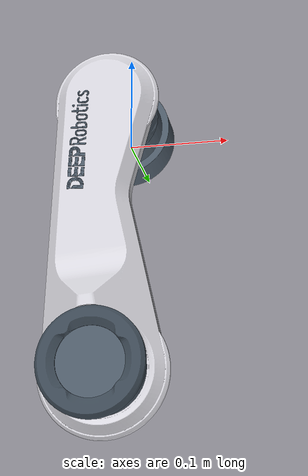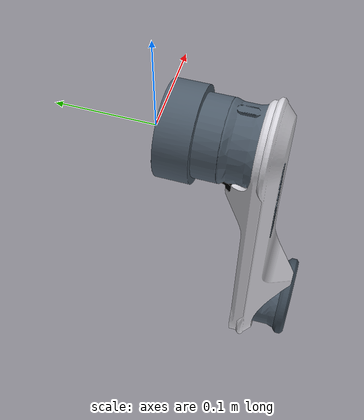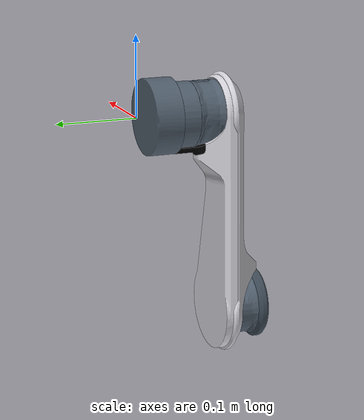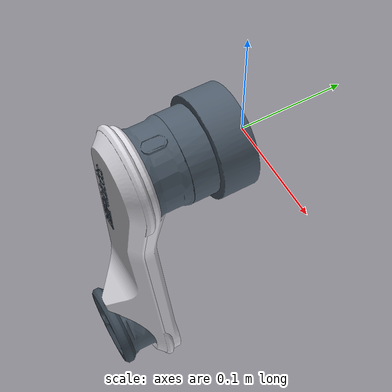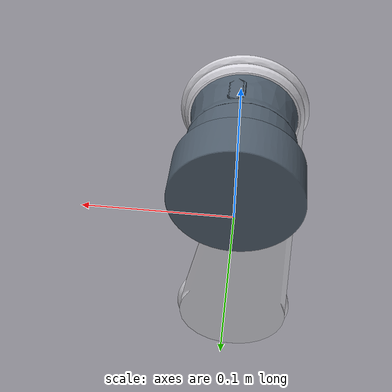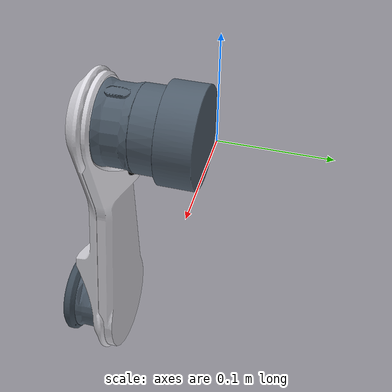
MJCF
<mujoco model="fr_hipy">
  <default>
    <default class="visual">
      <geom group="2" type="mesh" contype="0" conaffinity="0"/>
    </default>
    <default class="collision">
      <geom group="3" type="mesh"/>
    </default>
  </default>
  <asset>
    <material name="Material-7011油漆" specular="0.5" shininess="0.25" rgba="0.309804 0.364706 0.419608 1.000000"/>
    <material name="Material-7011油漆.001" specular="0.5" shininess="0.25" rgba="0.309804 0.364706 0.419608 1.000000"/>
    <material name="Material-7011油漆.002" specular="0.5" shininess="0.25" rgba="0.309804 0.364706 0.419608 1.000000"/>
    <material name="Material-7011油漆.003" specular="0.5" shininess="0.25" rgba="0.309804 0.364706 0.419608 1.000000"/>
    <material name="Material-7011油漆.004" specular="0.5" shininess="0.25" rgba="0.309804 0.364706 0.419608 1.000000"/>
    <material name="Material-7011油漆.005" specular="0.5" shininess="0.25" rgba="0.309804 0.364706 0.419608 1.000000"/>
    <material name="Material-7011油漆.006" specular="0.5" shininess="0.25" rgba="0.309804 0.364706 0.419608 1.000000"/>
    <material name="Material-7011油漆.007" specular="0.5" shininess="0.25" rgba="0.309804 0.364706 0.419608 1.000000"/>
    <material name="Material-7011油漆.008" specular="0.5" shininess="0.25" rgba="0.309804 0.364706 0.419608 1.000000"/>
    <material name="Material-7011油漆.009" specular="0.5" shininess="0.25" rgba="0.309804 0.364706 0.419608 1.000000"/>
    <material name="Material-7011油漆.010" specular="0.5" shininess="0.25" rgba="0.309804 0.364706 0.419608 1.000000"/>
    <material name="Material-7011油漆.011" specular="0.5" shininess="0.25" rgba="0.309804 0.364706 0.419608 1.000000"/>
    <material name="Material-7011油漆.012" specular="0.5" shininess="0.25" rgba="0.309804 0.364706 0.419608 1.000000"/>
    <material name="Material-7011油漆.013" specular="0.5" shininess="0.25" rgba="0.309804 0.364706 0.419608 1.000000"/>
    <material name="Material-7011油漆.014" specular="0.5" shininess="0.25" rgba="0.309804 0.364706 0.419608 1.000000"/>
    <material name="Material-7011油漆.015" specular="0.5" shininess="0.25" rgba="0.309804 0.364706 0.419608 1.000000"/>
    <material name="Material-7011油漆.016" specular="0.5" shininess="0.25" rgba="0.309804 0.364706 0.419608 1.000000"/>
    <material name="Material-7011油漆.017" specular="0.5" shininess="0.25" rgba="0.309804 0.364706 0.419608 1.000000"/>
    <material name="Material-7011油漆.018" specular="0.5" shininess="0.25" rgba="0.309804 0.364706 0.419608 1.000000"/>
    <material name="Material-7011油漆.019" specular="0.5" shininess="0.25" rgba="0.309804 0.364706 0.419608 1.000000"/>
    <material name="Material-7011油漆.020" specular="0.5" shininess="0.25" rgba="0.309804 0.364706 0.419608 1.000000"/>
    <material name="Material-7011油漆.021" specular="0.5" shininess="0.25" rgba="0.309804 0.364706 0.419608 1.000000"/>
    <material name="Material-7011油漆.022" specular="0.5" shininess="0.25" rgba="0.309804 0.364706 0.419608 1.000000"/>
    <material name="Material-7011油漆.023" specular="0.5" shininess="0.25" rgba="0.309804 0.364706 0.419608 1.000000"/>
    <material name="Material-7011油漆.024" specular="0.5" shininess="0.25" rgba="0.309804 0.364706 0.419608 1.000000"/>
    <material name="Material-7011油漆.025" specular="0.5" shininess="0.25" rgba="0.309804 0.364706 0.419608 1.000000"/>
    <material name="Material-7011油漆.026" specular="0.5" shininess="0.25" rgba="0.309804 0.364706 0.419608 1.000000"/>
    <material name="Material-7011油漆.027" specular="0.5" shininess="0.25" rgba="0.309804 0.364706 0.419608 1.000000"/>
    <material name="Material-7011油漆.028" specular="0.5" shininess="0.25" rgba="0.309804 0.364706 0.419608 1.000000"/>
    <material name="Material-7011油漆.029" specular="0.5" shininess="0.25" rgba="0.309804 0.364706 0.419608 1.000000"/>
    <material name="Material-7011油漆.030" specular="0.5" shininess="0.25" rgba="0.309804 0.364706 0.419608 1.000000"/>
    <material name="Material-7011油漆.031" specular="0.5" shininess="0.25" rgba="0.309804 0.364706 0.419608 1.000000"/>
    <material name="Material-7011油漆.032" specular="0.5" shininess="0.25" rgba="0.309804 0.364706 0.419608 1.000000"/>
    <material name="Material-7011油漆.033" specular="0.5" shininess="0.25" rgba="0.309804 0.364706 0.419608 1.000000"/>
    <material name="Material-7011油漆.034" specular="0.5" shininess="0.25" rgba="0.309804 0.364706 0.419608 1.000000"/>
    <material name="Material-7011油漆.035" specular="0.5" shininess="0.25" rgba="0.309804 0.364706 0.419608 1.000000"/>
    <material name="Material-7011油漆.036" specular="0.5" shininess="0.25" rgba="0.309804 0.364706 0.419608 1.000000"/>
    <material name="Material-7011油漆.037" specular="0.5" shininess="0.25" rgba="0.309804 0.364706 0.419608 1.000000"/>
    <material name="Material-7011油漆.038" specular="0.5" shininess="0.25" rgba="0.309804 0.364706 0.419608 1.000000"/>
    <material name="Material-7024塑胶" specular="0.5" shininess="0.25" rgba="0.239216 0.290196 0.337255 1.000000"/>
    <material name="Material-塑胶" specular="0.5" shininess="0.25" rgba="0.000000 0.000000 0.000000 1.000000"/>
    <material name="Material-塑胶__3_" specular="0.5" shininess="0.25" rgba="0.854902 0.850980 0.878431 1.000000"/>
    <material name="Material-油漆" specular="0.5" shininess="0.25" rgba="0.854902 0.850980 0.878431 1.000000"/>
    <mesh file="fr_hipy_0.obj"/>
    <mesh file="fr_hipy_1.obj"/>
    <mesh file="fr_hipy_2.obj"/>
    <mesh file="fr_hipy_3.obj"/>
    <mesh file="fr_hipy_4.obj"/>
    <mesh file="fr_hipy_5.obj"/>
    <mesh file="fr_hipy_6.obj"/>
    <mesh file="fr_hipy_7.obj"/>
    <mesh file="fr_hipy_8.obj"/>
    <mesh file="fr_hipy_9.obj"/>
    <mesh file="fr_hipy_10.obj"/>
    <mesh file="fr_hipy_11.obj"/>
    <mesh file="fr_hipy_12.obj"/>
    <mesh file="fr_hipy_13.obj"/>
    <mesh file="fr_hipy_14.obj"/>
    <mesh file="fr_hipy_15.obj"/>
    <mesh file="fr_hipy_16.obj"/>
    <mesh file="fr_hipy_17.obj"/>
    <mesh file="fr_hipy_18.obj"/>
    <mesh file="fr_hipy_19.obj"/>
    <mesh file="fr_hipy_20.obj"/>
    <mesh file="fr_hipy_21.obj"/>
    <mesh file="fr_hipy_22.obj"/>
    <mesh file="fr_hipy_23.obj"/>
    <mesh file="fr_hipy_24.obj"/>
    <mesh file="fr_hipy_25.obj"/>
    <mesh file="fr_hipy_26.obj"/>
    <mesh file="fr_hipy_27.obj"/>
    <mesh file="fr_hipy_28.obj"/>
    <mesh file="fr_hipy_29.obj"/>
    <mesh file="fr_hipy_30.obj"/>
    <mesh file="fr_hipy_31.obj"/>
    <mesh file="fr_hipy_32.obj"/>
    <mesh file="fr_hipy_33.obj"/>
    <mesh file="fr_hipy_34.obj"/>
    <mesh file="fr_hipy_35.obj"/>
    <mesh file="fr_hipy_36.obj"/>
    <mesh file="fr_hipy_37.obj"/>
    <mesh file="fr_hipy_38.obj"/>
    <mesh file="fr_hipy_39.obj"/>
    <mesh file="fr_hipy_40.obj"/>
    <mesh file="fr_hipy_41.obj"/>
    <mesh file="fr_hipy_42.obj"/>
  </asset>
  <worldbody>
    <body name="fr_hipy">
      <geom mesh="fr_hipy_0" material="Material-7011油漆.038" class="visual"/>
      <geom mesh="fr_hipy_1" material="Material-7011油漆.037" class="visual"/>
      <geom mesh="fr_hipy_2" material="Material-7011油漆.036" class="visual"/>
      <geom mesh="fr_hipy_3" material="Material-7011油漆.035" class="visual"/>
      <geom mesh="fr_hipy_4" material="Material-7011油漆.034" class="visual"/>
      <geom mesh="fr_hipy_5" material="Material-7011油漆.033" class="visual"/>
      <geom mesh="fr_hipy_6" material="Material-7011油漆.032" class="visual"/>
      <geom mesh="fr_hipy_7" material="Material-7011油漆.031" class="visual"/>
      <geom mesh="fr_hipy_8" material="Material-7011油漆.030" class="visual"/>
      <geom mesh="fr_hipy_9" material="Material-7011油漆.029" class="visual"/>
      <geom mesh="fr_hipy_10" material="Material-7011油漆.028" class="visual"/>
      <geom mesh="fr_hipy_11" material="Material-7011油漆.027" class="visual"/>
      <geom mesh="fr_hipy_12" material="Material-7011油漆.026" class="visual"/>
      <geom mesh="fr_hipy_13" material="Material-7011油漆.025" class="visual"/>
      <geom mesh="fr_hipy_14" material="Material-7011油漆.024" class="visual"/>
      <geom mesh="fr_hipy_15" material="Material-7011油漆.023" class="visual"/>
      <geom mesh="fr_hipy_16" material="Material-7011油漆.022" class="visual"/>
      <geom mesh="fr_hipy_17" material="Material-塑胶" class="visual"/>
      <geom mesh="fr_hipy_18" material="Material-7011油漆.021" class="visual"/>
      <geom mesh="fr_hipy_19" material="Material-7011油漆.020" class="visual"/>
      <geom mesh="fr_hipy_20" material="Material-7011油漆.019" class="visual"/>
      <geom mesh="fr_hipy_21" material="Material-7024塑胶" class="visual"/>
      <geom mesh="fr_hipy_22" material="Material-7011油漆.018" class="visual"/>
      <geom mesh="fr_hipy_23" material="Material-7011油漆.017" class="visual"/>
      <geom mesh="fr_hipy_24" material="Material-油漆" class="visual"/>
      <geom mesh="fr_hipy_25" material="Material-塑胶__3_" class="visual"/>
      <geom mesh="fr_hipy_26" material="Material-7011油漆.016" class="visual"/>
      <geom mesh="fr_hipy_27" material="Material-7011油漆.015" class="visual"/>
      <geom mesh="fr_hipy_28" material="Material-7011油漆.014" class="visual"/>
      <geom mesh="fr_hipy_29" material="Material-7011油漆.013" class="visual"/>
      <geom mesh="fr_hipy_30" material="Material-7011油漆.012" class="visual"/>
      <geom mesh="fr_hipy_31" material="Material-7011油漆.011" class="visual"/>
      <geom mesh="fr_hipy_32" material="Material-7011油漆.010" class="visual"/>
      <geom mesh="fr_hipy_33" material="Material-7011油漆.009" class="visual"/>
      <geom mesh="fr_hipy_34" material="Material-7011油漆.008" class="visual"/>
      <geom mesh="fr_hipy_35" material="Material-7011油漆.007" class="visual"/>
      <geom mesh="fr_hipy_36" material="Material-7011油漆.006" class="visual"/>
      <geom mesh="fr_hipy_37" material="Material-7011油漆.005" class="visual"/>
      <geom mesh="fr_hipy_38" material="Material-7011油漆.004" class="visual"/>
      <geom mesh="fr_hipy_39" material="Material-7011油漆.003" class="visual"/>
      <geom mesh="fr_hipy_40" material="Material-7011油漆.002" class="visual"/>
      <geom mesh="fr_hipy_41" material="Material-7011油漆.001" class="visual"/>
      <geom mesh="fr_hipy_42" material="Material-7011油漆" class="visual"/>
      <geom mesh="fr_hipy_0" class="collision"/>
      <geom mesh="fr_hipy_1" class="collision"/>
      <geom mesh="fr_hipy_2" class="collision"/>
      <geom mesh="fr_hipy_3" class="collision"/>
      <geom mesh="fr_hipy_4" class="collision"/>
      <geom mesh="fr_hipy_5" class="collision"/>
      <geom mesh="fr_hipy_6" class="collision"/>
      <geom mesh="fr_hipy_7" class="collision"/>
      <geom mesh="fr_hipy_8" class="collision"/>
      <geom mesh="fr_hipy_9" class="collision"/>
      <geom mesh="fr_hipy_10" class="collision"/>
      <geom mesh="fr_hipy_11" class="collision"/>
      <geom mesh="fr_hipy_12" class="collision"/>
      <geom mesh="fr_hipy_13" class="collision"/>
      <geom mesh="fr_hipy_14" class="collision"/>
      <geom mesh="fr_hipy_15" class="collision"/>
      <geom mesh="fr_hipy_16" class="collision"/>
      <geom mesh="fr_hipy_17" class="collision"/>
      <geom mesh="fr_hipy_18" class="collision"/>
      <geom mesh="fr_hipy_19" class="collision"/>
      <geom mesh="fr_hipy_20" class="collision"/>
      <geom mesh="fr_hipy_21" class="collision"/>
      <geom mesh="fr_hipy_22" class="collision"/>
      <geom mesh="fr_hipy_23" class="collision"/>
      <geom mesh="fr_hipy_24" class="collision"/>
      <geom mesh="fr_hipy_25" class="collision"/>
      <geom mesh="fr_hipy_26" class="collision"/>
      <geom mesh="fr_hipy_27" class="collision"/>
      <geom mesh="fr_hipy_28" class="collision"/>
      <geom mesh="fr_hipy_29" class="collision"/>
      <geom mesh="fr_hipy_30" class="collision"/>
      <geom mesh="fr_hipy_31" class="collision"/>
      <geom mesh="fr_hipy_32" class="collision"/>
      <geom mesh="fr_hipy_33" class="collision"/>
      <geom mesh="fr_hipy_34" class="collision"/>
      <geom mesh="fr_hipy_35" class="collision"/>
      <geom mesh="fr_hipy_36" class="collision"/>
      <geom mesh="fr_hipy_37" class="collision"/>
      <geom mesh="fr_hipy_38" class="collision"/>
      <geom mesh="fr_hipy_39" class="collision"/>
      <geom mesh="fr_hipy_40" class="collision"/>
      <geom mesh="fr_hipy_41" class="collision"/>
      <geom mesh="fr_hipy_42" class="collision"/>
    </body>
  </worldbody>
</mujoco>
